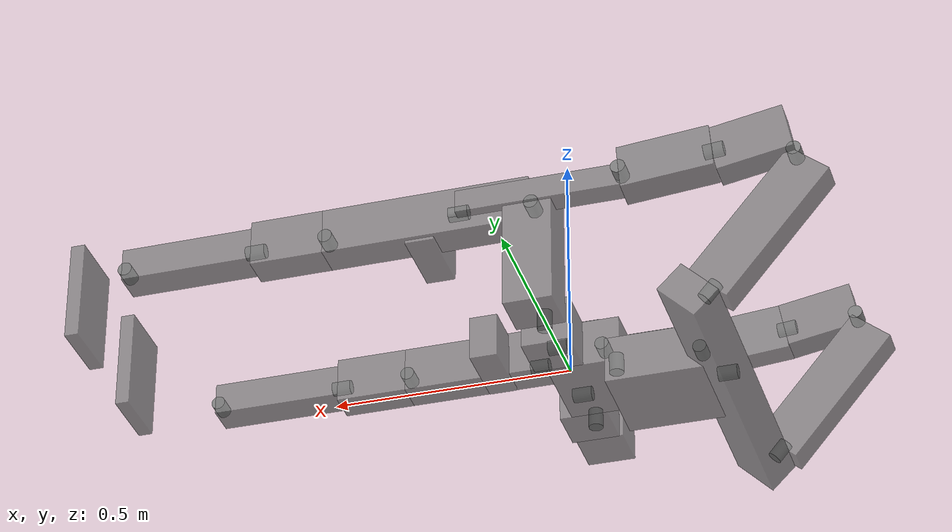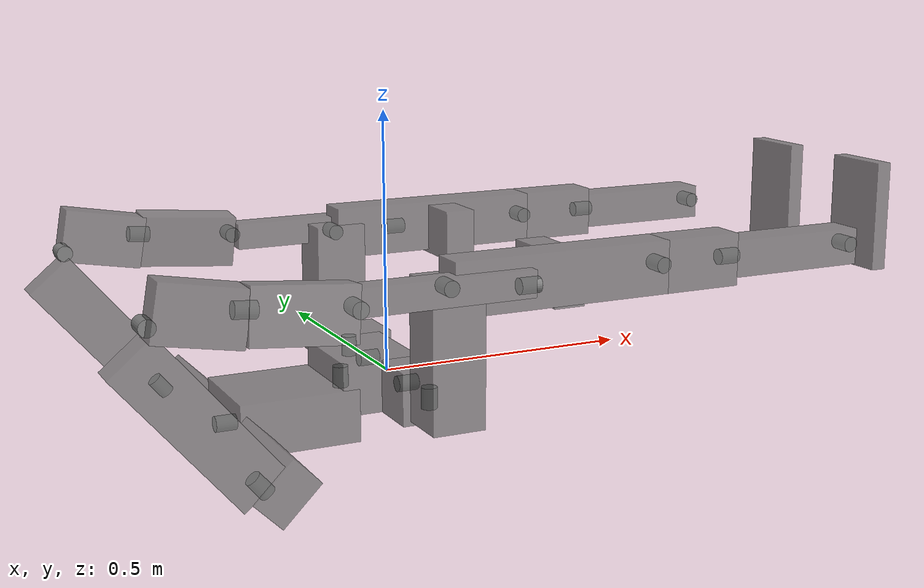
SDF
<?xml version="1.0" encoding="UTF-8" standalone="yes"?>
<sdf version="1.5">
    <model name="guardianXO_v1">
        <joint name="to1_tor_tilt" type="revolute">
            <axis>
                <dynamics>
                    <damping>0.1</damping>
                    <friction>0</friction>
                </dynamics>
                <limit>
                    <effort>100</effort>
                    <lower>-0.34907</lower>
                    <upper>0.34907</upper>
                    <velocity>12</velocity>
                </limit>
                <xyz>-1 0 0</xyz>
            </axis>
            <child>ltorso</child>
            <parent>pelvis</parent>
        </joint>
        <joint name="to2_tor_rota" type="revolute">
            <axis>
                <dynamics>
                    <damping>0.1</damping>
                    <friction>0</friction>
                </dynamics>
                <limit>
                    <effort>100</effort>
                    <lower>-0.34907</lower>
                    <upper>0.34907</upper>
                    <velocity>10</velocity>
                </limit>
                <xyz>0 0 -1</xyz>
            </axis>
            <child>utorso</child>
            <parent>ltorso</parent>
        </joint>
        <joint name="ra1_sho_abad" type="revolute">
            <axis>
                <dynamics>
                    <damping>0.1</damping>
                    <friction>0</friction>
                </dynamics>
                <limit>
                    <effort>100</effort>
                    <lower>-0.17453</lower>
                    <upper>2.0944</upper>
                    <velocity>12</velocity>
                </limit>
                <xyz>-0.76604 0 -0.64279</xyz>
            </axis>
            <child>r_ushou</child>
            <parent>utorso</parent>
        </joint>
        <joint name="ra2_sho_flex" type="revolute">
            <axis>
                <dynamics>
                    <damping>0.1</damping>
                    <friction>0</friction>
                </dynamics>
                <limit>
                    <effort>100</effort>
                    <lower>-0.47647</lower>
                    <upper>2.0944</upper>
                    <velocity>12</velocity>
                </limit>
                <xyz>0 -1 0</xyz>
            </axis>
            <child>r_lshou</child>
            <parent>r_ushou</parent>
        </joint>
        <joint name="ra3_hum_rota" type="revolute">
            <axis>
                <dynamics>
                    <damping>0.1</damping>
                    <friction>0</friction>
                </dynamics>
                <limit>
                    <effort>100</effort>
                    <lower>-1.3963</lower>
                    <upper>0.87266</upper>
                    <velocity>12</velocity>
                </limit>
                <xyz>-0.087156 0 -0.99619</xyz>
            </axis>
            <child>r_uarm</child>
            <parent>r_lshou</parent>
        </joint>
        <joint name="ra4_elb_flex" type="revolute">
            <axis>
                <dynamics>
                    <damping>0.1</damping>
                    <friction>0</friction>
                </dynamics>
                <limit>
                    <effort>100</effort>
                    <lower>0</lower>
                    <upper>2.6704</upper>
                    <velocity>12</velocity>
                </limit>
                <xyz>0 -1 0</xyz>
            </axis>
            <child>r_larm</child>
            <parent>r_uarm</parent>
        </joint>
        <joint name="ra5_wri_rota" type="revolute">
            <axis>
                <dynamics>
                    <damping>0.1</damping>
                    <friction>0</friction>
                </dynamics>
                <limit>
                    <effort>100</effort>
                    <lower>-1.5708</lower>
                    <upper>1.5708</upper>
                    <velocity>10</velocity>
                </limit>
                <xyz>-9.7145e-17 0 -1</xyz>
            </axis>
            <child>r_hand</child>
            <parent>r_larm</parent>
        </joint>
        <joint name="la1_sho_abad" type="revolute">
            <axis>
                <dynamics>
                    <damping>0.1</damping>
                    <friction>0</friction>
                </dynamics>
                <limit>
                    <effort>100</effort>
                    <lower>-0.17453</lower>
                    <upper>2.0944</upper>
                    <velocity>12</velocity>
                </limit>
                <xyz>0.76604 0 0.64279</xyz>
            </axis>
            <child>l_ushou</child>
            <parent>utorso</parent>
        </joint>
        <joint name="la2_sho_flex" type="revolute">
            <axis>
                <dynamics>
                    <damping>0.1</damping>
                    <friction>0</friction>
                </dynamics>
                <limit>
                    <effort>100</effort>
                    <lower>-0.47647</lower>
                    <upper>2.0944</upper>
                    <velocity>12</velocity>
                </limit>
                <xyz>0 -1 0</xyz>
            </axis>
            <child>l_lshou</child>
            <parent>l_ushou</parent>
        </joint>
        <joint name="la3_hum_rota" type="revolute">
            <axis>
                <dynamics>
                    <damping>0.1</damping>
                    <friction>0</friction>
                </dynamics>
                <limit>
                    <effort>100</effort>
                    <lower>-1.3963</lower>
                    <upper>0.87266</upper>
                    <velocity>12</velocity>
                </limit>
                <xyz>0.087156 0 0.99619</xyz>
            </axis>
            <child>l_uarm</child>
            <parent>l_lshou</parent>
        </joint>
        <joint name="la4_elb_flex" type="revolute">
            <axis>
                <dynamics>
                    <damping>0.1</damping>
                    <friction>0</friction>
                </dynamics>
                <limit>
                    <effort>100</effort>
                    <lower>0</lower>
                    <upper>2.6704</upper>
                    <velocity>12</velocity>
                </limit>
                <xyz>0 -1 0</xyz>
            </axis>
            <child>l_larm</child>
            <parent>l_uarm</parent>
        </joint>
        <joint name="la5_wri_rota" type="revolute">
            <axis>
                <dynamics>
                    <damping>0.1</damping>
                    <friction>0</friction>
                </dynamics>
                <limit>
                    <effort>100</effort>
                    <lower>-1.5708</lower>
                    <upper>1.5708</upper>
                    <velocity>10</velocity>
                </limit>
                <xyz>9.7145e-17 0 1</xyz>
            </axis>
            <child>l_hand</child>
            <parent>l_larm</parent>
        </joint>
        <joint name="rl1_hip_rota" type="revolute">
            <axis>
                <dynamics>
                    <damping>0.1</damping>
                    <friction>0</friction>
                </dynamics>
                <limit>
                    <effort>100</effort>
                    <lower>-0.2618</lower>
                    <upper>0.5236</upper>
                    <velocity>12</velocity>
                </limit>
                <xyz>0 0 -1</xyz>
            </axis>
            <child>r_glut</child>
            <parent>pelvis</parent>
        </joint>
        <joint name="rl2_hip_abad" type="revolute">
            <axis>
                <dynamics>
                    <damping>0.1</damping>
                    <friction>0</friction>
                </dynamics>
                <limit>
                    <effort>100</effort>
                    <lower>-0.5236</lower>
                    <upper>0.5236</upper>
                    <velocity>12</velocity>
                </limit>
                <xyz>-1 0 0</xyz>
            </axis>
            <child>r_hip</child>
            <parent>r_glut</parent>
        </joint>
        <joint name="rl3_hip_flex" type="revolute">
            <axis>
                <dynamics>
                    <damping>0.1</damping>
                    <friction>0</friction>
                </dynamics>
                <limit>
                    <effort>100</effort>
                    <lower>-0.43633</lower>
                    <upper>2.5307</upper>
                    <velocity>12</velocity>
                </limit>
                <xyz>0 -1 0</xyz>
            </axis>
            <child>r_thigh</child>
            <parent>r_hip</parent>
        </joint>
        <joint name="rl4_kne_flex" type="revolute">
            <axis>
                <dynamics>
                    <damping>0.1</damping>
                    <friction>0</friction>
                </dynamics>
                <limit>
                    <effort>100</effort>
                    <lower>-2.1817</lower>
                    <upper>0</upper>
                    <velocity>12</velocity>
                </limit>
                <xyz>0 -1 0</xyz>
            </axis>
            <child>r_ucalf</child>
            <parent>r_thigh</parent>
        </joint>
        <joint name="rl5_cal_rota" type="revolute">
            <axis>
                <dynamics>
                    <damping>0.1</damping>
                    <friction>0</friction>
                </dynamics>
                <limit>
                    <effort>100</effort>
                    <lower>-0.7854</lower>
                    <upper>0.7854</upper>
                    <velocity>12</velocity>
                </limit>
                <xyz>0 0 -1</xyz>
            </axis>
            <child>r_lcalf</child>
            <parent>r_ucalf</parent>
        </joint>
        <joint name="rl6_ank_flex" type="revolute">
            <axis>
                <dynamics>
                    <damping>0.1</damping>
                    <friction>0</friction>
                </dynamics>
                <limit>
                    <effort>100</effort>
                    <lower>-0.7854</lower>
                    <upper>1.0472</upper>
                    <velocity>12</velocity>
                </limit>
                <xyz>0 -1 0</xyz>
            </axis>
            <child>r_foot</child>
            <parent>r_lcalf</parent>
        </joint>
        <joint name="ll1_hip_rota" type="revolute">
            <axis>
                <dynamics>
                    <damping>0.1</damping>
                    <friction>0</friction>
                </dynamics>
                <limit>
                    <effort>100</effort>
                    <lower>-0.2618</lower>
                    <upper>0.5236</upper>
                    <velocity>12</velocity>
                </limit>
                <xyz>0 0 1</xyz>
            </axis>
            <child>l_glut</child>
            <parent>pelvis</parent>
        </joint>
        <joint name="ll2_hip_abad" type="revolute">
            <axis>
                <dynamics>
                    <damping>0.1</damping>
                    <friction>0</friction>
                </dynamics>
                <limit>
                    <effort>100</effort>
                    <lower>-0.5236</lower>
                    <upper>0.5236</upper>
                    <velocity>12</velocity>
                </limit>
                <xyz>1 0 0</xyz>
            </axis>
            <child>l_hip</child>
            <parent>l_glut</parent>
        </joint>
        <joint name="ll3_hip_flex" type="revolute">
            <axis>
                <dynamics>
                    <damping>0.1</damping>
                    <friction>0</friction>
                </dynamics>
                <limit>
                    <effort>100</effort>
                    <lower>-0.43633</lower>
                    <upper>2.5307</upper>
                    <velocity>12</velocity>
                </limit>
                <xyz>0 -1 0</xyz>
            </axis>
            <child>l_thigh</child>
            <parent>l_hip</parent>
        </joint>
        <joint name="ll4_kne_flex" type="revolute">
            <axis>
                <dynamics>
                    <damping>0.1</damping>
                    <friction>0</friction>
                </dynamics>
                <limit>
                    <effort>100</effort>
                    <lower>-2.1817</lower>
                    <upper>0</upper>
                    <velocity>12</velocity>
                </limit>
                <xyz>0 -1 0</xyz>
            </axis>
            <child>l_ucalf</child>
            <parent>l_thigh</parent>
        </joint>
        <joint name="ll5_cal_rota" type="revolute">
            <axis>
                <dynamics>
                    <damping>0.1</damping>
                    <friction>0</friction>
                </dynamics>
                <limit>
                    <effort>100</effort>
                    <lower>-0.7854</lower>
                    <upper>0.7854</upper>
                    <velocity>12</velocity>
                </limit>
                <xyz>0 0 1</xyz>
            </axis>
            <child>l_lcalf</child>
            <parent>l_ucalf</parent>
        </joint>
        <joint name="ll6_ank_flex" type="revolute">
            <axis>
                <dynamics>
                    <damping>0.1</damping>
                    <friction>0</friction>
                </dynamics>
                <limit>
                    <effort>100</effort>
                    <lower>-0.7854</lower>
                    <upper>1.0472</upper>
                    <velocity>12</velocity>
                </limit>
                <xyz>0 -1 0</xyz>
            </axis>
            <child>l_foot</child>
            <parent>l_lcalf</parent>
        </joint>
        <joint name="ft1_l_foot" type="revolute">
            <axis>
                <dynamics>
                    <damping>0.1</damping>
                    <friction>0</friction>
                </dynamics>
                <limit>
                    <effort>200</effort>
                    <lower>-0.005</lower>
                    <upper>0.005</upper>
                    <velocity>1</velocity>
                </limit>
                <xyz>-1 0 0</xyz>
            </axis>
            <child>l_foot_FT</child>
            <parent>l_foot</parent>
        </joint>
        <joint name="ft2_r_foot" type="revolute">
            <axis>
                <dynamics>
                    <damping>0.1</damping>
                    <friction>0</friction>
                </dynamics>
                <limit>
                    <effort>200</effort>
                    <lower>-0.005</lower>
                    <upper>0.005</upper>
                    <velocity>2</velocity>
                </limit>
                <xyz>-1 0 0</xyz>
            </axis>
            <child>r_foot_FT</child>
            <parent>r_foot</parent>
        </joint>
        <joint name="ft3_l_hand" type="revolute">
            <axis>
                <dynamics>
                    <damping>0.1</damping>
                    <friction>0</friction>
                </dynamics>
                <limit>
                    <effort>200</effort>
                    <lower>-0.005</lower>
                    <upper>0.005</upper>
                    <velocity>3</velocity>
                </limit>
                <xyz>-1 0 9.7145e-17</xyz>
            </axis>
            <child>l_hand_FT</child>
            <parent>l_hand</parent>
        </joint>
        <joint name="ft4_r_hand" type="revolute">
            <axis>
                <dynamics>
                    <damping>0.1</damping>
                    <friction>0</friction>
                </dynamics>
                <limit>
                    <effort>200</effort>
                    <lower>-0.005</lower>
                    <upper>0.005</upper>
                    <velocity>4</velocity>
                </limit>
                <xyz>1 0 -9.7145e-17</xyz>
            </axis>
            <child>r_hand_FT</child>
            <parent>r_hand</parent>
        </joint>
        <joint name="ft5_pelvis" type="revolute">
            <axis>
                <dynamics>
                    <damping>0.1</damping>
                    <friction>0</friction>
                </dynamics>
                <limit>
                    <effort>200</effort>
                    <lower>-0.005</lower>
                    <upper>0.005</upper>
                    <velocity>5</velocity>
                </limit>
                <xyz>0 1 0</xyz>
            </axis>
            <child>pelvis_FT</child>
            <parent>pelvis</parent>
        </joint>
        <joint name="ft6_torso" type="revolute">
            <axis>
                <dynamics>
                    <damping>0.1</damping>
                    <friction>0</friction>
                </dynamics>
                <limit>
                    <effort>200</effort>
                    <lower>-0.005</lower>
                    <upper>0.005</upper>
                    <velocity>6</velocity>
                </limit>
                <xyz>0 1 0</xyz>
            </axis>
            <child>torso_FT</child>
            <parent>utorso</parent>
        </joint>
        <link name="pelvis">
            <inertial>
                <inertia>
                    <ixx>0.086831</ixx>
                    <ixy>-9.8e-05</ixy>
                    <ixz>-1.4e-06</ixz>
                    <iyy>0.12768</iyy>
                    <iyz>-0.019368</iyz>
                    <izz>0.12709</izz>
                </inertia>
                <mass>12.8142</mass>
                <pose>0.00115 0.02425 0.00012 0 -1.5708 0</pose>
            </inertial>
            <pose>0 0 0 0 0 0</pose>
            <sensor name="imu_sensor_at_pelvis_frame" type="imu">
                <imu>
                    <noise>
                        <accel>
                            <bias_mean>0.1</bias_mean>
                            <bias_stddev>0.001</bias_stddev>
                            <mean>0</mean>
                            <stddev>0.017</stddev>
                        </accel>
                        <rate>
                            <bias_mean>7.5e-06</bias_mean>
                            <bias_stddev>8e-07</bias_stddev>
                            <mean>0</mean>
                            <stddev>0.0002</stddev>
                        </rate>
                        <type>gaussian</type>
                    </noise>
                </imu>
                <pose>0 0 0 0 0 0</pose>
                <update_rate>1000</update_rate>
            </sensor>
            <visual name="pelvis_visual_box">
                <geometry>
                    <box>
                        <size>0.1 0.1905 0.15</size>
                    </box>
                </geometry>
                <material>
                    <ambient>1 1 1 1</ambient>
                    <diffuse>0.5 0.5 0.5 1</diffuse>
                    <emissive>0 0 0 1</emissive>
                    <specular>1 1 1 1</specular>
                </material>
                <transparency>0.2</transparency>
                <pose>0 0 0.05 0 0 0</pose>
            </visual>
        </link>
        <link name="ltorso">
            <inertial>
                <inertia>
                    <ixx>0.010501</ixx>
                    <ixy>-4.47e-05</ixy>
                    <ixz>0.0026378</ixz>
                    <iyy>0.083485</iyy>
                    <iyz>2.7e-06</iyz>
                    <izz>0.083126</izz>
                </inertia>
                <mass>6.471</mass>
                <pose>0.1193 -0.00024 0.05482 0 0 0</pose>
            </inertial>
            <pose>0 0 0.09525 0 -1.5708 0</pose>
            <visual name="ltorso_visual_jointCylinder">
                <geometry>
                    <cylinder>
                        <length>0.04</length>
                        <radius>0.015</radius>
                    </cylinder>
                </geometry>
                <material>
                    <ambient>0 0 0 1</ambient>
                    <diffuse>0.5 0.5 0.5 1</diffuse>
                    <emissive>0 0 0 1</emissive>
                    <specular>0 0 0 1</specular>
                </material>
                <pose>0 0 0 0 0 0</pose>
            </visual>
            <visual name="ltorso_visual_box">
                <geometry>
                    <box>
                        <size>0.2286 0.2 0.1</size>
                    </box>
                </geometry>
                <material>
                    <ambient>1 1 1 1</ambient>
                    <diffuse>0.5 0.5 0.5 1</diffuse>
                    <emissive>0 0 0 1</emissive>
                    <specular>1 1 1 1</specular>
                </material>
                <transparency>0.2</transparency>
                <pose>0.1143 0 0.05 0 0 0</pose>
            </visual>
        </link>
        <link name="utorso">
            <inertial>
                <inertia>
                    <ixx>0.53111</ixx>
                    <ixy>0.000923</ixy>
                    <ixz>-0.0007483</ixz>
                    <iyy>1.1873</iyy>
                    <iyz>-0.077863</iyz>
                    <izz>0.91496</izz>
                </inertia>
                <mass>31.3577</mass>
                <pose>-0.00112 -0.01501 -0.10391 0 0 0</pose>
            </inertial>
            <pose>-0.060401 0 0.32385 3.1416 0 1.5708</pose>
            <visual name="utorso_visual_jointCylinder">
                <geometry>
                    <cylinder>
                        <length>0.04</length>
                        <radius>0.015</radius>
                    </cylinder>
                </geometry>
                <material>
                    <ambient>0 0 0 1</ambient>
                    <diffuse>0.5 0.5 0.5 1</diffuse>
                    <emissive>0 0 0 1</emissive>
                    <specular>0 0 0 1</specular>
                </material>
                <pose>0 0 0 0 0 0</pose>
            </visual>
            <visual name="utorso_visual_box">
                <geometry>
                    <box>
                        <size>0.7 0.1 0.07</size>
                    </box>
                </geometry>
                <material>
                    <ambient>1 1 1 1</ambient>
                    <diffuse>0.5 0.5 0.5 1</diffuse>
                    <emissive>0 0 0 1</emissive>
                    <specular>1 1 1 1</specular>
                </material>
                <transparency>0.2</transparency>
                <pose>0 -0.02 0 0.7854 0 0</pose>
            </visual>
        </link>
        <link name="r_ushou">
            <inertial>
                <inertia>
                    <ixx>0.0017929</ixx>
                    <ixy>0.0017929</ixy>
                    <ixz>0.0046508</ixz>
                    <iyy>0.034874</iyy>
                    <iyz>0.0073972</iyz>
                    <izz>0.012524</izz>
                </inertia>
                <mass>4.8909</mass>
                <pose>0.0164 0.0039 -0.19416 0 0 0</pose>
            </inertial>
            <pose>-0.07013 -0.31433 0.36077 2.2689 0 -1.5708</pose>
            <visual name="r_ushou_visual_jointCylinder">
                <geometry>
                    <cylinder>
                        <length>0.04</length>
                        <radius>0.015</radius>
                    </cylinder>
                </geometry>
                <material>
                    <ambient>0 0 0 1</ambient>
                    <diffuse>0.5 0.5 0.5 1</diffuse>
                    <emissive>0 0 0 1</emissive>
                    <specular>0 0 0 1</specular>
                </material>
                <pose>0 0 0 0 0 0</pose>
            </visual>
            <visual name="r_ushou_visual_box">
                <geometry>
                    <box>
                        <size>0.06 0.1 0.3302</size>
                    </box>
                </geometry>
                <material>
                    <ambient>1 1 1 1</ambient>
                    <diffuse>0.5 0.5 0.5 1</diffuse>
                    <emissive>0 0 0 1</emissive>
                    <specular>1 1 1 1</specular>
                </material>
                <transparency>0.2</transparency>
                <pose>0 0 -0.16307 0 0 0</pose>
            </visual>
        </link>
        <link name="r_lshou">
            <inertial>
                <inertia>
                    <ixx>0.0042548</ixx>
                    <ixy>0.0002492</ixy>
                    <ixz>-0.0002769</ixz>
                    <iyy>0.0076126</iyy>
                    <iyz>-5.2e-05</iyz>
                    <izz>0.007705</izz>
                </inertia>
                <mass>3.2262</mass>
                <pose>0.11093 0.01825 0.02571 0 0 0</pose>
            </inertial>
            <pose>0.22209 -0.30798 0.53966 -1.5708 1.4835 3.1416</pose>
            <visual name="r_lshou_visual_jointCylinder">
                <geometry>
                    <cylinder>
                        <length>0.04</length>
                        <radius>0.015</radius>
                    </cylinder>
                </geometry>
                <material>
                    <ambient>0 0 0 1</ambient>
                    <diffuse>0.5 0.5 0.5 1</diffuse>
                    <emissive>0 0 0 1</emissive>
                    <specular>0 0 0 1</specular>
                </material>
                <pose>0 0 0 0 0 0</pose>
            </visual>
            <visual name="r_lshou_visual_box">
                <geometry>
                    <box>
                        <size>0.15494 0.1 0.06</size>
                    </box>
                </geometry>
                <material>
                    <ambient>1 1 1 1</ambient>
                    <diffuse>0.5 0.5 0.5 1</diffuse>
                    <emissive>0 0 0 1</emissive>
                    <specular>1 1 1 1</specular>
                </material>
                <transparency>0.2</transparency>
                <pose>0.0772 0.024536 0.024638 0 0 -0.087266</pose>
            </visual>
        </link>
        <link name="r_uarm">
            <inertial>
                <inertia>
                    <ixx>0.019109</ixx>
                    <ixy>0.0001927</ixy>
                    <ixz>-0.0025684</ixz>
                    <iyy>0.018812</iyy>
                    <iyz>-0.0002236</iyz>
                    <izz>0.011074</izz>
                </inertia>
                <mass>4.8829</mass>
                <pose>-0.00114 -0.00151 0.11122 0 0 0</pose>
            </inertial>
            <pose>0.23834 -0.33889 0.38526 -3.0543 0 1.5708</pose>
            <visual name="r_uarm_visual_jointCylinder">
                <geometry>
                    <cylinder>
                        <length>0.04</length>
                        <radius>0.015</radius>
                    </cylinder>
                </geometry>
                <material>
                    <ambient>0 0 0 1</ambient>
                    <diffuse>0.5 0.5 0.5 1</diffuse>
                    <emissive>0 0 0 1</emissive>
                    <specular>0 0 0 1</specular>
                </material>
                <pose>0 0 0 0 0 0</pose>
            </visual>
            <visual name="r_uarm_visual_box">
                <geometry>
                    <box>
                        <size>0.06 0.1 0.18796</size>
                    </box>
                </geometry>
                <material>
                    <ambient>1 1 1 1</ambient>
                    <diffuse>0.5 0.5 0.5 1</diffuse>
                    <emissive>0 0 0 1</emissive>
                    <specular>1 1 1 1</specular>
                </material>
                <transparency>0.2</transparency>
                <pose>0 -0.0081788 0.09398 0 0 -0.087266</pose>
            </visual>
        </link>
        <link name="r_larm">
            <inertial>
                <inertia>
                    <ixx>0.0004628</ixx>
                    <ixy>0.0009098</ixy>
                    <ixz>-0.0004177</ixz>
                    <iyy>0.010386</iyy>
                    <iyz>-1.28e-05</iyz>
                    <izz>0.010507</izz>
                </inertia>
                <mass>0.69113</mass>
                <pose>0.11918 -0.02395 -0.03337 0 0 0</pose>
            </inertial>
            <pose>0.22185 -0.34524 0.19678 -1.5708 1.5708 3.1416</pose>
            <visual name="r_larm_visual_jointCylinder">
                <geometry>
                    <cylinder>
                        <length>0.04</length>
                        <radius>0.015</radius>
                    </cylinder>
                </geometry>
                <material>
                    <ambient>0 0 0 1</ambient>
                    <diffuse>0.5 0.5 0.5 1</diffuse>
                    <emissive>0 0 0 1</emissive>
                    <specular>0 0 0 1</specular>
                </material>
                <pose>0 0 0 0 0 0</pose>
            </visual>
            <visual name="r_larm_visual_box">
                <geometry>
                    <box>
                        <size>0.3429 0.05 0.05</size>
                    </box>
                </geometry>
                <material>
                    <ambient>1 1 1 1</ambient>
                    <diffuse>0.5 0.5 0.5 1</diffuse>
                    <emissive>0 0 0 1</emissive>
                    <specular>1 1 1 1</specular>
                </material>
                <transparency>0.2</transparency>
                <pose>0.17145 0.003048 -0.03683 0 0 0</pose>
            </visual>
        </link>
        <link name="r_hand">
            <inertial>
                <inertia>
                    <ixx>0.016224</ixx>
                    <ixy>0.000437</ixy>
                    <ixz>0.0051128</ixz>
                    <iyy>0.039465</iyy>
                    <iyz>-0.0003224</iyz>
                    <izz>0.034758</izz>
                </inertia>
                <mass>3.2281</mass>
                <pose>0.07931 0.00146 0.0648 0 0 0</pose>
            </inertial>
            <pose>0.21575 -0.30226 -0.14612 -3.1416 0 1.5708</pose>
            <visual name="r_hand_visual_jointCylinder">
                <geometry>
                    <cylinder>
                        <length>0.04</length>
                        <radius>0.015</radius>
                    </cylinder>
                </geometry>
                <material>
                    <ambient>0 0 0 1</ambient>
                    <diffuse>0.5 0.5 0.5 1</diffuse>
                    <emissive>0 0 0 1</emissive>
                    <specular>0 0 0 1</specular>
                </material>
                <pose>0 0 0 0 0 0</pose>
            </visual>
            <visual name="r_hand_visual_box">
                <geometry>
                    <box>
                        <size>0.1524 0.1 0.06</size>
                    </box>
                </geometry>
                <material>
                    <ambient>1 1 1 1</ambient>
                    <diffuse>0.5 0.5 0.5 1</diffuse>
                    <emissive>0 0 0 1</emissive>
                    <specular>1 1 1 1</specular>
                </material>
                <transparency>0.2</transparency>
                <pose>0.0762 0 0.083388 0 0 0</pose>
            </visual>
        </link>
        <link name="l_ushou">
            <inertial>
                <inertia>
                    <ixx>0.036159</ixx>
                    <ixy>0.0018219</ixy>
                    <ixz>-0.0046394</ixz>
                    <iyy>0.034888</iyy>
                    <iyz>-0.0074231</iyz>
                    <izz>0.012539</izz>
                </inertia>
                <mass>4.8909</mass>
                <pose>0.01647 0.00381 0.19425 0 0 0</pose>
            </inertial>
            <pose>-0.07013 0.31432 0.36077 0.87266 0 1.5708</pose>
            <visual name="l_ushou_visual_jointCylinder">
                <geometry>
                    <cylinder>
                        <length>0.04</length>
                        <radius>0.015</radius>
                    </cylinder>
                </geometry>
                <material>
                    <ambient>0 0 0 1</ambient>
                    <diffuse>0.5 0.5 0.5 1</diffuse>
                    <emissive>0 0 0 1</emissive>
                    <specular>0 0 0 1</specular>
                </material>
                <pose>0 0 0 0 0 0</pose>
            </visual>
            <visual name="l_ushou_visual_box">
                <geometry>
                    <box>
                        <size>0.06 0.1 0.3302</size>
                    </box>
                </geometry>
                <material>
                    <ambient>1 1 1 1</ambient>
                    <diffuse>0.5 0.5 0.5 1</diffuse>
                    <emissive>0 0 0 1</emissive>
                    <specular>1 1 1 1</specular>
                </material>
                <transparency>0.2</transparency>
                <pose>0 0 0.16307 0 0 0</pose>
            </visual>
        </link>
        <link name="l_lshou">
            <inertial>
                <inertia>
                    <ixx>0.0042649</ixx>
                    <ixy>0.0002646</ixy>
                    <ixz>0.0002986</ixz>
                    <iyy>0.0076452</iyy>
                    <iyz>5.18e-05</iyz>
                    <izz>0.0077414</izz>
                </inertia>
                <mass>3.231</mass>
                <pose>0.11087 0.0182 -0.02557 0 0 0</pose>
            </inertial>
            <pose>0.22209 0.30797 0.53966 -1.5708 1.4835 3.1416</pose>
            <visual name="l_lshou_visual_jointCylinder">
                <geometry>
                    <cylinder>
                        <length>0.04</length>
                        <radius>0.015</radius>
                    </cylinder>
                </geometry>
                <material>
                    <ambient>0 0 0 1</ambient>
                    <diffuse>0.5 0.5 0.5 1</diffuse>
                    <emissive>0 0 0 1</emissive>
                    <specular>0 0 0 1</specular>
                </material>
                <pose>0 0 0 0 0 0</pose>
            </visual>
            <visual name="l_lshou_visual_box">
                <geometry>
                    <box>
                        <size>0.15494 0.1 0.06</size>
                    </box>
                </geometry>
                <material>
                    <ambient>1 1 1 1</ambient>
                    <diffuse>0.5 0.5 0.5 1</diffuse>
                    <emissive>0 0 0 1</emissive>
                    <specular>1 1 1 1</specular>
                </material>
                <transparency>0.2</transparency>
                <pose>0.0772 0.024536 -0.024638 0 0 -0.087266</pose>
            </visual>
        </link>
        <link name="l_uarm">
            <inertial>
                <inertia>
                    <ixx>0.019132</ixx>
                    <ixy>0.0001585</ixy>
                    <ixz>0.0025749</ixz>
                    <iyy>0.018815</iyy>
                    <iyz>0.0002531</iyz>
                    <izz>0.011079</izz>
                </inertia>
                <mass>4.8803</mass>
                <pose>-0.00112 -0.00157 -0.11125 0 0 0</pose>
            </inertial>
            <pose>0.23833 0.33889 0.38525 -0.087266 0 -1.5708</pose>
            <visual name="l_uarm_visual_jointCylinder">
                <geometry>
                    <cylinder>
                        <length>0.04</length>
                        <radius>0.015</radius>
                    </cylinder>
                </geometry>
                <material>
                    <ambient>0 0 0 1</ambient>
                    <diffuse>0.5 0.5 0.5 1</diffuse>
                    <emissive>0 0 0 1</emissive>
                    <specular>0 0 0 1</specular>
                </material>
                <pose>0 0 0 0 0 0</pose>
            </visual>
            <visual name="l_uarm_visual_box">
                <geometry>
                    <box>
                        <size>0.06 0.1 0.18796</size>
                    </box>
                </geometry>
                <material>
                    <ambient>1 1 1 1</ambient>
                    <diffuse>0.5 0.5 0.5 1</diffuse>
                    <emissive>0 0 0 1</emissive>
                    <specular>1 1 1 1</specular>
                </material>
                <transparency>0.2</transparency>
                <pose>0 -0.0081788 -0.09398 0 0 -0.087266</pose>
            </visual>
        </link>
        <link name="l_larm">
            <inertial>
                <inertia>
                    <ixx>0.0004628</ixx>
                    <ixy>0.0009098</ixy>
                    <ixz>0.0004177</ixz>
                    <iyy>0.010386</iyy>
                    <iyz>1.28e-05</iyz>
                    <izz>0.010507</izz>
                </inertia>
                <mass>0.69113</mass>
                <pose>0.11918 -0.02395 0.0337 0 0 0</pose>
            </inertial>
            <pose>0.22184 0.34524 0.19677 -1.5708 1.5708 3.1416</pose>
            <visual name="l_larm_visual_jointCylinder">
                <geometry>
                    <cylinder>
                        <length>0.04</length>
                        <radius>0.015</radius>
                    </cylinder>
                </geometry>
                <material>
                    <ambient>0 0 0 1</ambient>
                    <diffuse>0.5 0.5 0.5 1</diffuse>
                    <emissive>0 0 0 1</emissive>
                    <specular>0 0 0 1</specular>
                </material>
                <pose>0 0 0 0 0 0</pose>
            </visual>
            <visual name="l_larm_visual_box">
                <geometry>
                    <box>
                        <size>0.3429 0.05 0.05</size>
                    </box>
                </geometry>
                <material>
                    <ambient>1 1 1 1</ambient>
                    <diffuse>0.5 0.5 0.5 1</diffuse>
                    <emissive>0 0 0 1</emissive>
                    <specular>1 1 1 1</specular>
                </material>
                <transparency>0.2</transparency>
                <pose>0.17145 0.003048 0.03683 0 0 0</pose>
            </visual>
        </link>
        <link name="l_hand">
            <inertial>
                <inertia>
                    <ixx>0.015967</ixx>
                    <ixy>0.0002098</ixy>
                    <ixz>-0.0057656</ixz>
                    <iyy>0.039945</iyy>
                    <iyz>0.0002799</iyz>
                    <izz>0.034993</izz>
                </inertia>
                <mass>3.231</mass>
                <pose>0.07931 0.00146 -0.0648 0 0 0</pose>
            </inertial>
            <pose>0.21575 0.30226 -0.14613 -9.7145e-17 0 -1.5708</pose>
            <visual name="l_hand_visual_jointCylinder">
                <geometry>
                    <cylinder>
                        <length>0.04</length>
                        <radius>0.015</radius>
                    </cylinder>
                </geometry>
                <material>
                    <ambient>0 0 0 1</ambient>
                    <diffuse>0.5 0.5 0.5 1</diffuse>
                    <emissive>0 0 0 1</emissive>
                    <specular>0 0 0 1</specular>
                </material>
                <pose>0 0 0 0 0 0</pose>
            </visual>
            <visual name="l_hand_visual_box">
                <geometry>
                    <box>
                        <size>0.1524 0.1 0.06</size>
                    </box>
                </geometry>
                <material>
                    <ambient>1 1 1 1</ambient>
                    <diffuse>0.5 0.5 0.5 1</diffuse>
                    <emissive>0 0 0 1</emissive>
                    <specular>1 1 1 1</specular>
                </material>
                <transparency>0.2</transparency>
                <pose>0.0762 0 -0.083388 0 0 0</pose>
            </visual>
        </link>
        <link name="r_glut">
            <inertial>
                <inertia>
                    <ixx>0.0096119</ixx>
                    <ixy>0.00066364</ixy>
                    <ixz>-4.03e-05</ixz>
                    <iyy>0.0047752</iyy>
                    <iyz>1.88e-05</iyz>
                    <izz>0.0081957</izz>
                </inertia>
                <mass>1.6525</mass>
                <pose>-0.051696 -0.020482 -0.004015 0 0 0</pose>
            </inertial>
            <pose>0 -0.09525 0 3.1416 0 1.5708</pose>
            <visual name="r_glut_visual_jointCylinder">
                <geometry>
                    <cylinder>
                        <length>0.04</length>
                        <radius>0.015</radius>
                    </cylinder>
                </geometry>
                <material>
                    <ambient>0 0 0 1</ambient>
                    <diffuse>0.5 0.5 0.5 1</diffuse>
                    <emissive>0 0 0 1</emissive>
                    <specular>0 0 0 1</specular>
                </material>
                <pose>0 0 0 0 0 0</pose>
            </visual>
            <visual name="r_glut_visual_box">
                <geometry>
                    <box>
                        <size>0.1 0.1 0.1</size>
                    </box>
                </geometry>
                <material>
                    <ambient>1 1 1 1</ambient>
                    <diffuse>0.5 0.5 0.5 1</diffuse>
                    <emissive>0 0 0 1</emissive>
                    <specular>1 1 1 1</specular>
                </material>
                <transparency>0.2</transparency>
                <pose>-0.05 0 0 0 0 0</pose>
            </visual>
        </link>
        <link name="r_hip">
            <inertial>
                <inertia>
                    <ixx>0.11557</ixx>
                    <ixy>6.62e-05</ixy>
                    <ixz>-0.019291</ixz>
                    <iyy>0.12858</iyy>
                    <iyz>0.00061499</iyz>
                    <izz>0.052472</izz>
                </inertia>
                <mass>11.9738</mass>
                <pose>0.06256 -0.00065 -0.05684 0 0 0</pose>
            </inertial>
            <pose>0 -0.19685 0 1.5708 0 -1.5708</pose>
            <visual name="r_hip_visual_jointCylinder">
                <geometry>
                    <cylinder>
                        <length>0.04</length>
                        <radius>0.015</radius>
                    </cylinder>
                </geometry>
                <material>
                    <ambient>0 0 0 1</ambient>
                    <diffuse>0.5 0.5 0.5 1</diffuse>
                    <emissive>0 0 0 1</emissive>
                    <specular>0 0 0 1</specular>
                </material>
                <pose>0 0 0 0 0 0</pose>
            </visual>
            <visual name="r_hip_visual_box">
                <geometry>
                    <box>
                        <size>0.1 0.1 0.27</size>
                    </box>
                </geometry>
                <material>
                    <ambient>1 1 1 1</ambient>
                    <diffuse>0.5 0.5 0.5 1</diffuse>
                    <emissive>0 0 0 1</emissive>
                    <specular>1 1 1 1</specular>
                </material>
                <transparency>0.2</transparency>
                <pose>0.07932 0 -0.105 0 0 0</pose>
            </visual>
        </link>
        <link name="r_thigh">
            <inertial>
                <inertia>
                    <ixx>0.055358</ixx>
                    <ixy>-0.02765</ixy>
                    <ixz>-0.0079492</ixz>
                    <iyy>0.19792</iyy>
                    <iyz>0.0023908</iyz>
                    <izz>0.23096</izz>
                </inertia>
                <mass>11.5655</mass>
                <pose>0.2582 0.03897 0.00593 0 0 0</pose>
            </inertial>
            <pose>0.22225 -0.27617 0 0 1.5708 -1.5708</pose>
            <visual name="r_thigh_visual_jointCylinder">
                <geometry>
                    <cylinder>
                        <length>0.04</length>
                        <radius>0.015</radius>
                    </cylinder>
                </geometry>
                <material>
                    <ambient>0 0 0 1</ambient>
                    <diffuse>0.5 0.5 0.5 1</diffuse>
                    <emissive>0 0 0 1</emissive>
                    <specular>0 0 0 1</specular>
                </material>
                <pose>0 0 0 0 0 0</pose>
            </visual>
            <visual name="r_thigh_visual_box">
                <geometry>
                    <box>
                        <size>0.4318 0.1 0.07</size>
                    </box>
                </geometry>
                <material>
                    <ambient>1 1 1 1</ambient>
                    <diffuse>0.5 0.5 0.5 1</diffuse>
                    <emissive>0 0 0 1</emissive>
                    <specular>1 1 1 1</specular>
                </material>
                <transparency>0.2</transparency>
                <pose>0.2159 0 0 0 0 0</pose>
            </visual>
        </link>
        <link name="r_ucalf">
            <inertial>
                <inertia>
                    <ixx>0.019191</ixx>
                    <ixy>-0.012582</ixy>
                    <ixz>-0.00022245</ixz>
                    <iyy>0.035278</iyy>
                    <iyz>-1.16e-05</iyz>
                    <izz>0.042714</izz>
                </inertia>
                <mass>5.0013</mass>
                <pose>0.14182 0.01863 0.00066 0 0 0</pose>
            </inertial>
            <pose>0.22225 -0.27617 -0.4318 0 1.5708 -1.5708</pose>
            <visual name="r_ucalf_visual_jointCylinder">
                <geometry>
                    <cylinder>
                        <length>0.04</length>
                        <radius>0.015</radius>
                    </cylinder>
                </geometry>
                <material>
                    <ambient>0 0 0 1</ambient>
                    <diffuse>0.5 0.5 0.5 1</diffuse>
                    <emissive>0 0 0 1</emissive>
                    <specular>0 0 0 1</specular>
                </material>
                <pose>0 0 0 0 0 0</pose>
            </visual>
            <visual name="r_ucalf_visual_box">
                <geometry>
                    <box>
                        <size>0.1524 0.1 0.07</size>
                    </box>
                </geometry>
                <material>
                    <ambient>1 1 1 1</ambient>
                    <diffuse>0.5 0.5 0.5 1</diffuse>
                    <emissive>0 0 0 1</emissive>
                    <specular>1 1 1 1</specular>
                </material>
                <transparency>0.2</transparency>
                <pose>0.0762 0 0 0 0 0</pose>
            </visual>
        </link>
        <link name="r_lcalf">
            <inertial>
                <inertia>
                    <ixx>0.024212</ixx>
                    <ixy>7.56e-05</ixy>
                    <ixz>0.0032577</ixz>
                    <iyy>0.022567</iyy>
                    <iyz>2.4e-05</iyz>
                    <izz>0.01153</izz>
                </inertia>
                <mass>4.7446</mass>
                <pose>-0.01761 0.00083 0.18404 0 0 0</pose>
            </inertial>
            <pose>0.22225 -0.27617 -0.5842 3.1416 0 1.5708</pose>
            <visual name="r_lcalf_visual_jointCylinder">
                <geometry>
                    <cylinder>
                        <length>0.04</length>
                        <radius>0.015</radius>
                    </cylinder>
                </geometry>
                <material>
                    <ambient>0 0 0 1</ambient>
                    <diffuse>0.5 0.5 0.5 1</diffuse>
                    <emissive>0 0 0 1</emissive>
                    <specular>0 0 0 1</specular>
                </material>
                <pose>0 0 0 0 0 0</pose>
            </visual>
            <visual name="r_lcalf_visual_box">
                <geometry>
                    <box>
                        <size>0.07 0.07 0.2794</size>
                    </box>
                </geometry>
                <material>
                    <ambient>1 1 1 1</ambient>
                    <diffuse>0.5 0.5 0.5 1</diffuse>
                    <emissive>0 0 0 1</emissive>
                    <specular>1 1 1 1</specular>
                </material>
                <transparency>0.2</transparency>
                <pose>0 0 0.1397 0 0 0</pose>
            </visual>
        </link>
        <link name="r_foot">
            <inertial>
                <inertia>
                    <ixx>0.035371</ixx>
                    <ixy>0.00089975</ixy>
                    <ixz>-0.0066994</ixz>
                    <iyy>0.025373</iyy>
                    <iyz>-0.0048519</iyz>
                    <izz>0.032481</izz>
                </inertia>
                <mass>3.6694</mass>
                <pose>0.11143 0.0358 -0.09939 0 0 0</pose>
            </inertial>
            <pose>0.22225 -0.27617 -0.8636 0 1.5708 -1.5708</pose>
            <visual name="r_foot_visual_jointCylinder">
                <geometry>
                    <cylinder>
                        <length>0.04</length>
                        <radius>0.015</radius>
                    </cylinder>
                </geometry>
                <material>
                    <ambient>0 0 0 1</ambient>
                    <diffuse>0.5 0.5 0.5 1</diffuse>
                    <emissive>0 0 0 1</emissive>
                    <specular>0 0 0 1</specular>
                </material>
                <pose>0 0 0 0 0 0</pose>
            </visual>
            <visual name="r_foot_visual_box">
                <geometry>
                    <box>
                        <size>0.03012 0.22078 0.1397</size>
                    </box>
                </geometry>
                <material>
                    <ambient>1 1 1 1</ambient>
                    <diffuse>0.5 0.5 0.5 1</diffuse>
                    <emissive>0 0 0 1</emissive>
                    <specular>1 1 1 1</specular>
                </material>
                <transparency>0.2</transparency>
                <pose>0.14702 0.028677 -0.13454 0 0 0</pose>
            </visual>
        </link>
        <link name="l_glut">
            <inertial>
                <inertia>
                    <ixx>0.0096112</ixx>
                    <ixy>0.00066352</ixy>
                    <ixz>4.04e-05</ixz>
                    <iyy>0.0047752</iyy>
                    <iyz>-1.84e-05</iyz>
                    <izz>0.008195</izz>
                </inertia>
                <mass>1.6525</mass>
                <pose>-0.0556 -0.01481 0.0038 0 0 0</pose>
            </inertial>
            <pose>0 0.09525 0 0 0 -1.5708</pose>
            <visual name="l_glut_visual_jointCylinder">
                <geometry>
                    <cylinder>
                        <length>0.04</length>
                        <radius>0.015</radius>
                    </cylinder>
                </geometry>
                <material>
                    <ambient>0 0 0 1</ambient>
                    <diffuse>0.5 0.5 0.5 1</diffuse>
                    <emissive>0 0 0 1</emissive>
                    <specular>0 0 0 1</specular>
                </material>
                <pose>0 0 0 0 0 0</pose>
            </visual>
            <visual name="l_glut_visual_box">
                <geometry>
                    <box>
                        <size>0.1 0.1 0.1</size>
                    </box>
                </geometry>
                <material>
                    <ambient>1 1 1 1</ambient>
                    <diffuse>0.5 0.5 0.5 1</diffuse>
                    <emissive>0 0 0 1</emissive>
                    <specular>1 1 1 1</specular>
                </material>
                <transparency>0.2</transparency>
                <pose>-0.05 0 0 0 0 0</pose>
            </visual>
        </link>
        <link name="l_hip">
            <inertial>
                <inertia>
                    <ixx>0.11554</ixx>
                    <ixy>-4.84e-05</ixy>
                    <ixz>0.019297</ixz>
                    <iyy>0.12856</iyy>
                    <iyz>-0.00070911</iyz>
                    <izz>0.052463</izz>
                </inertia>
                <mass>11.9732</mass>
                <pose>0.06256 -0.00092 0.05683 0 0 0</pose>
            </inertial>
            <pose>0 0.19685 0 1.5708 0 1.5708</pose>
            <visual name="l_hip_visual_jointCylinder">
                <geometry>
                    <cylinder>
                        <length>0.04</length>
                        <radius>0.015</radius>
                    </cylinder>
                </geometry>
                <material>
                    <ambient>0 0 0 1</ambient>
                    <diffuse>0.5 0.5 0.5 1</diffuse>
                    <emissive>0 0 0 1</emissive>
                    <specular>0 0 0 1</specular>
                </material>
                <pose>0 0 0 0 0 0</pose>
            </visual>
            <visual name="l_hip_visual_box">
                <geometry>
                    <box>
                        <size>0.1 0.1 0.27</size>
                    </box>
                </geometry>
                <material>
                    <ambient>1 1 1 1</ambient>
                    <diffuse>0.5 0.5 0.5 1</diffuse>
                    <emissive>0 0 0 1</emissive>
                    <specular>1 1 1 1</specular>
                </material>
                <transparency>0.2</transparency>
                <pose>0.07932 0 0.105 0 0 0</pose>
            </visual>
        </link>
        <link name="l_thigh">
            <inertial>
                <inertia>
                    <ixx>0.055644</ixx>
                    <ixy>-0.027764</ixy>
                    <ixz>0.0078621</ixz>
                    <iyy>0.19807</iyy>
                    <iyz>-0.0024714</iyz>
                    <izz>0.2314</izz>
                </inertia>
                <mass>11.5656</mass>
                <pose>0.25783 0.03881 -0.00593 0 0 0</pose>
            </inertial>
            <pose>0.22225 0.27617 0 0 1.5708 -1.5708</pose>
            <visual name="l_thigh_visual_jointCylinder">
                <geometry>
                    <cylinder>
                        <length>0.04</length>
                        <radius>0.015</radius>
                    </cylinder>
                </geometry>
                <material>
                    <ambient>0 0 0 1</ambient>
                    <diffuse>0.5 0.5 0.5 1</diffuse>
                    <emissive>0 0 0 1</emissive>
                    <specular>0 0 0 1</specular>
                </material>
                <pose>0 0 0 0 0 0</pose>
            </visual>
            <visual name="l_thigh_visual_box">
                <geometry>
                    <box>
                        <size>0.4318 0.1 0.07</size>
                    </box>
                </geometry>
                <material>
                    <ambient>1 1 1 1</ambient>
                    <diffuse>0.5 0.5 0.5 1</diffuse>
                    <emissive>0 0 0 1</emissive>
                    <specular>1 1 1 1</specular>
                </material>
                <transparency>0.2</transparency>
                <pose>0.2159 0 0 0 0 0</pose>
            </visual>
        </link>
        <link name="l_ucalf">
            <inertial>
                <inertia>
                    <ixx>0.019177</ixx>
                    <ixy>-0.012539</ixy>
                    <ixz>5.57e-05</ixz>
                    <iyy>0.035279</iyy>
                    <iyz>0.000114</iyz>
                    <izz>0.042701</izz>
                </inertia>
                <mass>5.0017</mass>
                <pose>0.14183 0.01872 -0.00041 0 0 0</pose>
            </inertial>
            <pose>0.22225 0.27617 -0.4318 0 1.5708 -1.5708</pose>
            <visual name="l_ucalf_visual_jointCylinder">
                <geometry>
                    <cylinder>
                        <length>0.04</length>
                        <radius>0.015</radius>
                    </cylinder>
                </geometry>
                <material>
                    <ambient>0 0 0 1</ambient>
                    <diffuse>0.5 0.5 0.5 1</diffuse>
                    <emissive>0 0 0 1</emissive>
                    <specular>0 0 0 1</specular>
                </material>
                <pose>0 0 0 0 0 0</pose>
            </visual>
            <visual name="l_ucalf_visual_box">
                <geometry>
                    <box>
                        <size>0.1524 0.1 0.07</size>
                    </box>
                </geometry>
                <material>
                    <ambient>1 1 1 1</ambient>
                    <diffuse>0.5 0.5 0.5 1</diffuse>
                    <emissive>0 0 0 1</emissive>
                    <specular>1 1 1 1</specular>
                </material>
                <transparency>0.2</transparency>
                <pose>0.0762 0 0 0 0 0</pose>
            </visual>
        </link>
        <link name="l_lcalf">
            <inertial>
                <inertia>
                    <ixx>0.023824</ixx>
                    <ixy>0.00015254</ixy>
                    <ixz>-0.0032161</ixz>
                    <iyy>0.022268</iyy>
                    <iyz>-0.00019447</iyz>
                    <izz>0.011414</izz>
                </inertia>
                <mass>4.7149</mass>
                <pose>-0.01771 0.0012 -0.18346 0 0 0</pose>
            </inertial>
            <pose>0.22225 0.27617 -0.5842 0 0 -1.5708</pose>
            <visual name="l_lcalf_visual_jointCylinder">
                <geometry>
                    <cylinder>
                        <length>0.04</length>
                        <radius>0.015</radius>
                    </cylinder>
                </geometry>
                <material>
                    <ambient>0 0 0 1</ambient>
                    <diffuse>0.5 0.5 0.5 1</diffuse>
                    <emissive>0 0 0 1</emissive>
                    <specular>0 0 0 1</specular>
                </material>
                <pose>0 0 0 0 0 0</pose>
            </visual>
            <visual name="l_lcalf_visual_box">
                <geometry>
                    <box>
                        <size>0.07 0.07 0.2794</size>
                    </box>
                </geometry>
                <material>
                    <ambient>1 1 1 1</ambient>
                    <diffuse>0.5 0.5 0.5 1</diffuse>
                    <emissive>0 0 0 1</emissive>
                    <specular>1 1 1 1</specular>
                </material>
                <transparency>0.2</transparency>
                <pose>0 0 -0.1397 0 0 0</pose>
            </visual>
        </link>
        <link name="l_foot">
            <inertial>
                <inertia>
                    <ixx>0.034394</ixx>
                    <ixy>0.0018656</ixy>
                    <ixz>0.0065531</ixz>
                    <iyy>0.027417</iyy>
                    <iyz>0.0047328</iyz>
                    <izz>0.033535</izz>
                </inertia>
                <mass>3.6694</mass>
                <pose>0.10949 0.03324 0.09945 0 0 0</pose>
            </inertial>
            <pose>0.22225 0.27617 -0.8636 0 1.5708 -1.5708</pose>
            <visual name="l_foot_visual_jointCylinder">
                <geometry>
                    <cylinder>
                        <length>0.04</length>
                        <radius>0.015</radius>
                    </cylinder>
                </geometry>
                <material>
                    <ambient>0 0 0 1</ambient>
                    <diffuse>0.5 0.5 0.5 1</diffuse>
                    <emissive>0 0 0 1</emissive>
                    <specular>0 0 0 1</specular>
                </material>
                <pose>0 0 0 0 0 0</pose>
            </visual>
            <visual name="l_foot_visual_box">
                <geometry>
                    <box>
                        <size>0.03012 0.22078 0.1397</size>
                    </box>
                </geometry>
                <material>
                    <ambient>1 1 1 1</ambient>
                    <diffuse>0.5 0.5 0.5 1</diffuse>
                    <emissive>0 0 0 1</emissive>
                    <specular>1 1 1 1</specular>
                </material>
                <transparency>0.2</transparency>
                <pose>0.14701 0.028677 0.13454 0 0 0</pose>
            </visual>
        </link>
        <link name="l_foot_FT">
            <inertial>
                <inertia>
                    <ixx>0.001</ixx>
                    <ixy>0</ixy>
                    <ixz>0</ixz>
                    <iyy>0.001</iyy>
                    <iyz>0</iyz>
                    <izz>0.001</izz>
                </inertia>
                <mass>0.001</mass>
                <pose>0 0 0 0 0 1.7453e-05</pose>
            </inertial>
            <pose>0.25895 0.14167 -1.0106 -1.5708 1.5359 1.5708</pose>
        </link>
        <link name="r_foot_FT">
            <inertial>
                <inertia>
                    <ixx>0.001</ixx>
                    <ixy>0</ixy>
                    <ixz>0</ixz>
                    <iyy>0.001</iyy>
                    <iyz>0</iyz>
                    <izz>0.001</izz>
                </inertia>
                <mass>0.001</mass>
                <pose>0 0 0 0 0 1.7453e-05</pose>
            </inertial>
            <pose>0.25895 -0.14167 -1.0106 1.5708 1.5359 -1.5708</pose>
        </link>
        <link name="l_hand_FT">
            <inertial>
                <inertia>
                    <ixx>0.001</ixx>
                    <ixy>0</ixy>
                    <ixz>0</ixz>
                    <iyy>0.001</iyy>
                    <iyz>0</iyz>
                    <izz>0.001</izz>
                </inertia>
                <mass>0.001</mass>
                <pose>0 0 0 0 0 1.7453e-05</pose>
            </inertial>
            <pose>0.21575 0.30226 -0.22953 0 1.5708 3.1416</pose>
        </link>
        <link name="r_hand_FT">
            <inertial>
                <inertia>
                    <ixx>0.001</ixx>
                    <ixy>0</ixy>
                    <ixz>0</ixz>
                    <iyy>0.001</iyy>
                    <iyz>0</iyz>
                    <izz>0.001</izz>
                </inertia>
                <mass>0.001</mass>
                <pose>0 0 0 0 0 1.7453e-05</pose>
            </inertial>
            <pose>0.21575 -0.30226 -0.062724 3.1416 -1.5708 0</pose>
        </link>
        <link name="pelvis_FT">
            <inertial>
                <inertia>
                    <ixx>0.001</ixx>
                    <ixy>0</ixy>
                    <ixz>0</ixz>
                    <iyy>0.001</iyy>
                    <iyz>0</iyz>
                    <izz>0.001</izz>
                </inertia>
                <mass>0.001</mass>
                <pose>0 0 0 0 0 1.7453e-05</pose>
            </inertial>
            <pose>0.0375 0 0.0635 1.5708 0 3.1416</pose>
        </link>
        <link name="torso_FT">
            <inertial>
                <inertia>
                    <ixx>0.001</ixx>
                    <ixy>0</ixy>
                    <ixz>0</ixz>
                    <iyy>0.001</iyy>
                    <iyz>0</iyz>
                    <izz>0.001</izz>
                </inertia>
                <mass>0.001</mass>
                <pose>0 0 0 0 0 1.7453e-05</pose>
            </inertial>
            <pose>0.5776 0 0.45375 1.5708 0 3.1416</pose>
        </link>
        <pose>0 0 0 0 -1.5708 0</pose>
    </model>
</sdf>
